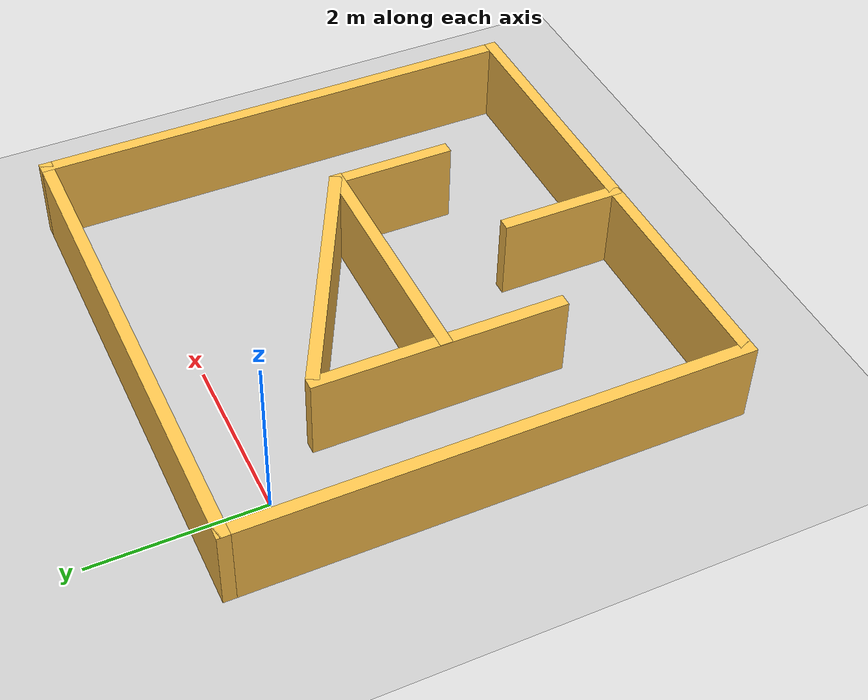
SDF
<sdf version="1.7">
 <world name="default">
  <light name="sun" type="directional">
   <pose>0 0 10 0 -0 0</pose>
   <diffuse>0.8 0.8 0.8 1</diffuse>
   <specular>0.2 0.2 0.2 1</specular>
   <attenuation>
    <range>1000</range>
    <constant>0.9</constant>
    <linear>0.01</linear>
    <quadratic>0.001</quadratic>
   </attenuation>
   <direction>-0.5 0.1 -0.9</direction>
   <spot><inner_angle>0</inner_angle><outer_angle>0</outer_angle><falloff>0</falloff></spot>
  </light>
  <model name="ground_plane">
   <static>1</static>
   <link name="link">
    <collision name="collision">
     <geometry><plane><normal>0 0 1</normal><size>100 100</size></plane></geometry>
     <surface>
      <contact><collide_bitmask>65535</collide_bitmask></contact>
      <friction><ode><mu>100</mu><mu2>50</mu2></ode></friction>
     </surface>
    </collision>
    <visual name="visual">
     <cast_shadows>0</cast_shadows>
     <geometry><plane><normal>0 0 1</normal><size>100 100</size></plane></geometry>
     <material>
      <script><uri>file://media/materials/scripts/gazebo.material</uri><name>Gazebo/Grey</name></script>
     </material>
    </visual>
   </link>
  </model>
  <gravity>0 0 -9.8</gravity>
  <magnetic_field>6e-06 2.3e-05 -4.2e-05</magnetic_field>
  <atmosphere type="adiabatic"/>
  <physics type="ode">
   <max_step_size>0.001</max_step_size>
   <real_time_factor>1</real_time_factor>
   <real_time_update_rate>1000</real_time_update_rate>
  </physics>
  <scene><ambient>0.4 0.4 0.4 1</ambient><background>0.7 0.7 0.7 1</background><shadows>1</shadows></scene>
  <audio><device>default</device></audio>
  <spherical_coordinates>
   <surface_model>EARTH_WGS84</surface_model>
   <latitude_deg>0</latitude_deg>
   <longitude_deg>0</longitude_deg>
   <elevation>0</elevation>
   <heading_deg>0</heading_deg>
  </spherical_coordinates>
  <model name="Circuit_ql_1">
   <link name="Wall_10">
    <pose>-0.0015 2.925 0 0 -0 3.14159</pose>
    <visual name="Wall_10_Visual">
     <pose>0 0 0.5 0 -0 0</pose>
     <geometry><box><size>6 0.15 1</size></box></geometry>
     <material>
      <script><uri>file://media/materials/scripts/gazebo.material</uri><name>Gazebo/Grey</name></script>
      <ambient>1 0.764706 0.305882 1</ambient>
      <shader type="pixel"/>
      <diffuse>0.7 0.7 0.7 1</diffuse>
      <specular>0.01 0.01 0.01 1</specular>
      <emissive>0 0 0 1</emissive>
     </material>
    </visual>
    <collision name="Wall_10_Collision">
     <pose>0 0 0.5 0 -0 0</pose>
     <geometry><box><size>6 0.15 1</size></box></geometry>
     <surface>
      <friction><ode><mu>1</mu><mu2>1</mu2><fdir1>0 0 0</fdir1><slip1>0</slip1><slip2>0</slip2></ode></friction>
      <bounce><restitution_coefficient>0</restitution_coefficient><threshold>1e+06</threshold></bounce>
      <contact>
       <collide_without_contact>0</collide_without_contact>
       <collide_without_contact_bitmask>1</collide_without_contact_bitmask>
       <collide_bitmask>1</collide_bitmask>
       <ode>
        <soft_cfm>0</soft_cfm>
        <soft_erp>0.2</soft_erp>
        <kp>1e+13</kp>
        <kd>1</kd>
        <max_vel>0.01</max_vel>
        <min_depth>0</min_depth>
       </ode>
       <bullet>
        <split_impulse>1</split_impulse>
        <split_impulse_penetration_threshold>-0.01</split_impulse_penetration_threshold>
        <soft_cfm>0</soft_cfm>
        <soft_erp>0.2</soft_erp>
        <kp>1e+13</kp>
        <kd>1</kd>
       </bullet>
      </contact>
     </surface>
    </collision>
   </link>
   <link name="Wall_11">
    <pose>-2.9265 0 0 0 0 -1.5708</pose>
    <visual name="Wall_11_Visual">
     <pose>0 0 0.5 0 -0 0</pose>
     <geometry><box><size>6 0.15 1</size></box></geometry>
     <material>
      <script><uri>file://media/materials/scripts/gazebo.material</uri><name>Gazebo/Grey</name></script>
      <ambient>1 0.764706 0.305882 1</ambient>
      <shader type="pixel"/>
      <diffuse>0.7 0.7 0.7 1</diffuse>
      <specular>0.01 0.01 0.01 1</specular>
      <emissive>0 0 0 1</emissive>
     </material>
    </visual>
    <collision name="Wall_11_Collision">
     <pose>0 0 0.5 0 -0 0</pose>
     <geometry><box><size>6 0.15 1</size></box></geometry>
     <surface>
      <friction><ode><mu>1</mu><mu2>1</mu2><fdir1>0 0 0</fdir1><slip1>0</slip1><slip2>0</slip2></ode></friction>
      <bounce><restitution_coefficient>0</restitution_coefficient><threshold>1e+06</threshold></bounce>
      <contact>
       <collide_without_contact>0</collide_without_contact>
       <collide_without_contact_bitmask>1</collide_without_contact_bitmask>
       <collide_bitmask>1</collide_bitmask>
       <ode>
        <soft_cfm>0</soft_cfm>
        <soft_erp>0.2</soft_erp>
        <kp>1e+13</kp>
        <kd>1</kd>
        <max_vel>0.01</max_vel>
        <min_depth>0</min_depth>
       </ode>
       <bullet>
        <split_impulse>1</split_impulse>
        <split_impulse_penetration_threshold>-0.01</split_impulse_penetration_threshold>
        <soft_cfm>0</soft_cfm>
        <soft_erp>0.2</soft_erp>
        <kp>1e+13</kp>
        <kd>1</kd>
       </bullet>
      </contact>
     </surface>
    </collision>
   </link>
   <link name="Wall_13">
    <pose>-0.1665 -2.238 0 0 -0 1.5708</pose>
    <visual name="Wall_13_Visual">
     <pose>0 0 0.5 0 -0 0</pose>
     <geometry><box><size>1.5 0.15 1</size></box></geometry>
     <material>
      <script><uri>file://media/materials/scripts/gazebo.material</uri><name>Gazebo/Grey</name></script>
      <ambient>1 0.764706 0.305882 1</ambient>
      <shader type="pixel"/>
      <diffuse>0.7 0.7 0.7 1</diffuse>
      <specular>0.01 0.01 0.01 1</specular>
      <emissive>0 0 0 1</emissive>
     </material>
    </visual>
    <collision name="Wall_13_Collision">
     <pose>0 0 0.5 0 -0 0</pose>
     <geometry><box><size>1.5 0.15 1</size></box></geometry>
     <surface>
      <friction><ode><mu>1</mu><mu2>1</mu2><fdir1>0 0 0</fdir1><slip1>0</slip1><slip2>0</slip2></ode></friction>
      <bounce><restitution_coefficient>0</restitution_coefficient><threshold>1e+06</threshold></bounce>
      <contact>
       <collide_without_contact>0</collide_without_contact>
       <collide_without_contact_bitmask>1</collide_without_contact_bitmask>
       <collide_bitmask>1</collide_bitmask>
       <ode>
        <soft_cfm>0</soft_cfm>
        <soft_erp>0.2</soft_erp>
        <kp>1e+13</kp>
        <kd>1</kd>
        <max_vel>0.01</max_vel>
        <min_depth>0</min_depth>
       </ode>
       <bullet>
        <split_impulse>1</split_impulse>
        <split_impulse_penetration_threshold>-0.01</split_impulse_penetration_threshold>
        <soft_cfm>0</soft_cfm>
        <soft_erp>0.2</soft_erp>
        <kp>1e+13</kp>
        <kd>1</kd>
       </bullet>
      </contact>
     </surface>
    </collision>
   </link>
   <link name="Wall_13_clone">
    <pose>1.32944 -0.77198 0 0 -0 1.5708</pose>
    <visual name="ModelPreview_1::Wall_13_clone::Wall_13_Visual">
     <pose>0 0 0.5 0 -0 0</pose>
     <geometry><box><size>1.5 0.15 1</size></box></geometry>
     <material>
      <script><uri>file://media/materials/scripts/gazebo.material</uri><name>Gazebo/Grey</name></script>
      <ambient>1 0.764706 0.305882 1</ambient>
      <shader type="pixel"/>
      <diffuse>0.7 0.7 0.7 1</diffuse>
      <specular>0.01 0.01 0.01 1</specular>
      <emissive>0 0 0 1</emissive>
     </material>
    </visual>
    <collision name="Wall_13_Collision">
     <pose>0 0 0.5 0 -0 0</pose>
     <geometry><box><size>1.5 0.15 1</size></box></geometry>
     <surface>
      <friction><ode><mu>1</mu><mu2>1</mu2><fdir1>0 0 0</fdir1><slip1>0</slip1><slip2>0</slip2></ode></friction>
      <bounce><restitution_coefficient>0</restitution_coefficient><threshold>1e+06</threshold></bounce>
      <contact>
       <collide_without_contact>0</collide_without_contact>
       <collide_without_contact_bitmask>1</collide_without_contact_bitmask>
       <collide_bitmask>1</collide_bitmask>
       <ode>
        <soft_cfm>0</soft_cfm>
        <soft_erp>0.2</soft_erp>
        <kp>1e+13</kp>
        <kd>1</kd>
        <max_vel>0.01</max_vel>
        <min_depth>0</min_depth>
       </ode>
       <bullet>
        <split_impulse>1</split_impulse>
        <split_impulse_penetration_threshold>-0.01</split_impulse_penetration_threshold>
        <soft_cfm>0</soft_cfm>
        <soft_erp>0.2</soft_erp>
        <kp>1e+13</kp>
        <kd>1</kd>
       </bullet>
      </contact>
     </surface>
    </collision>
   </link>
   <link name="Wall_15">
    <pose>-1.51922 -0.038071 0 0 -0 1.5708</pose>
    <visual name="Wall_15_Visual">
     <pose>0 0 0.5 0 -0 0</pose>
     <geometry><box><size>3 0.15 1</size></box></geometry>
     <material>
      <script><uri>file://media/materials/scripts/gazebo.material</uri><name>Gazebo/Grey</name></script>
      <ambient>1 0.764706 0.305882 1</ambient>
      <shader type="pixel"/>
      <diffuse>0.7 0.7 0.7 1</diffuse>
      <specular>0.01 0.01 0.01 1</specular>
      <emissive>0 0 0 1</emissive>
     </material>
    </visual>
    <collision name="Wall_15_Collision">
     <pose>0 0 0.5 0 -0 0</pose>
     <geometry><box><size>3 0.15 1</size></box></geometry>
     <surface>
      <friction><ode><mu>1</mu><mu2>1</mu2><fdir1>0 0 0</fdir1><slip1>0</slip1><slip2>0</slip2></ode></friction>
      <bounce><restitution_coefficient>0</restitution_coefficient><threshold>1e+06</threshold></bounce>
      <contact>
       <collide_without_contact>0</collide_without_contact>
       <collide_without_contact_bitmask>1</collide_without_contact_bitmask>
       <collide_bitmask>1</collide_bitmask>
       <ode>
        <soft_cfm>0</soft_cfm>
        <soft_erp>0.2</soft_erp>
        <kp>1e+13</kp>
        <kd>1</kd>
        <max_vel>0.01</max_vel>
        <min_depth>0</min_depth>
       </ode>
       <bullet>
        <split_impulse>1</split_impulse>
        <split_impulse_penetration_threshold>-0.01</split_impulse_penetration_threshold>
        <soft_cfm>0</soft_cfm>
        <soft_erp>0.2</soft_erp>
        <kp>1e+13</kp>
        <kd>1</kd>
       </bullet>
      </contact>
     </surface>
    </collision>
   </link>
   <link name="Wall_15_clone">
    <pose>-0.089166 -0.090738 0 0 0 -0.004296</pose>
    <visual name="ModelPreview_1::Wall_15_clone::Wall_15_Visual">
     <pose>0 0 0.5 0 -0 0</pose>
     <geometry><box><size>3 0.15 1</size></box></geometry>
     <material>
      <script><uri>file://media/materials/scripts/gazebo.material</uri><name>Gazebo/Grey</name></script>
      <ambient>1 0.764706 0.305882 1</ambient>
      <shader type="pixel"/>
      <diffuse>0.7 0.7 0.7 1</diffuse>
      <specular>0.01 0.01 0.01 1</specular>
      <emissive>0 0 0 1</emissive>
     </material>
    </visual>
    <collision name="Wall_15_Collision">
     <pose>0 0 0.5 0 -0 0</pose>
     <geometry><box><size>3 0.15 1</size></box></geometry>
     <surface>
      <friction><ode><mu>1</mu><mu2>1</mu2><fdir1>0 0 0</fdir1><slip1>0</slip1><slip2>0</slip2></ode></friction>
      <bounce><restitution_coefficient>0</restitution_coefficient><threshold>1e+06</threshold></bounce>
      <contact>
       <collide_without_contact>0</collide_without_contact>
       <collide_without_contact_bitmask>1</collide_without_contact_bitmask>
       <collide_bitmask>1</collide_bitmask>
       <ode>
        <soft_cfm>0</soft_cfm>
        <soft_erp>0.2</soft_erp>
        <kp>1e+13</kp>
        <kd>1</kd>
        <max_vel>0.01</max_vel>
        <min_depth>0</min_depth>
       </ode>
       <bullet>
        <split_impulse>1</split_impulse>
        <split_impulse_penetration_threshold>-0.01</split_impulse_penetration_threshold>
        <soft_cfm>0</soft_cfm>
        <soft_erp>0.2</soft_erp>
        <kp>1e+13</kp>
        <kd>1</kd>
       </bullet>
      </contact>
     </surface>
    </collision>
   </link>
   <link name="Wall_15_clone_0">
    <pose>-0.053217 0.650721 0 0 0 -0.479256</pose>
    <visual name="ModelPreview_1::Wall_15_clone_0::Wall_15_Visual">
     <pose>0 0 0.5 0 -0 0</pose>
     <geometry><box><size>3.22377 0.15 1</size></box></geometry>
     <material>
      <script><uri>file://media/materials/scripts/gazebo.material</uri><name>Gazebo/Grey</name></script>
      <ambient>1 0.764706 0.305882 1</ambient>
      <shader type="pixel"/>
      <diffuse>0.7 0.7 0.7 1</diffuse>
      <specular>0.01 0.01 0.01 1</specular>
      <emissive>0 0 0 1</emissive>
     </material>
    </visual>
    <collision name="Wall_15_Collision">
     <pose>0 0 0.5 0 -0 0</pose>
     <geometry><box><size>3.22377 0.15 1</size></box></geometry>
     <surface>
      <friction><ode><mu>1</mu><mu2>1</mu2><fdir1>0 0 0</fdir1><slip1>0</slip1><slip2>0</slip2></ode></friction>
      <bounce><restitution_coefficient>0</restitution_coefficient><threshold>1e+06</threshold></bounce>
      <contact>
       <collide_without_contact>0</collide_without_contact>
       <collide_without_contact_bitmask>1</collide_without_contact_bitmask>
       <collide_bitmask>1</collide_bitmask>
       <ode>
        <soft_cfm>0</soft_cfm>
        <soft_erp>0.2</soft_erp>
        <kp>1e+13</kp>
        <kd>1</kd>
        <max_vel>0.01</max_vel>
        <min_depth>0</min_depth>
       </ode>
       <bullet>
        <split_impulse>1</split_impulse>
        <split_impulse_penetration_threshold>-0.01</split_impulse_penetration_threshold>
        <soft_cfm>0</soft_cfm>
        <soft_erp>0.2</soft_erp>
        <kp>1e+13</kp>
        <kd>1</kd>
       </bullet>
      </contact>
     </surface>
    </collision>
   </link>
   <link name="Wall_6">
    <pose>-0.0015 -2.925 0 0 -0 0</pose>
    <visual name="Wall_6_Visual">
     <pose>0 0 0.5 0 -0 0</pose>
     <geometry><box><size>6 0.15 1</size></box></geometry>
     <material>
      <script><uri>file://media/materials/scripts/gazebo.material</uri><name>Gazebo/Grey</name></script>
      <ambient>1 0.764706 0.305882 1</ambient>
      <shader type="pixel"/>
      <diffuse>0.7 0.7 0.7 1</diffuse>
      <specular>0.01 0.01 0.01 1</specular>
      <emissive>0 0 0 1</emissive>
     </material>
    </visual>
    <collision name="Wall_6_Collision">
     <pose>0 0 0.5 0 -0 0</pose>
     <geometry><box><size>6 0.15 1</size></box></geometry>
     <surface>
      <friction><ode><mu>1</mu><mu2>1</mu2><fdir1>0 0 0</fdir1><slip1>0</slip1><slip2>0</slip2></ode></friction>
      <bounce><restitution_coefficient>0</restitution_coefficient><threshold>1e+06</threshold></bounce>
      <contact>
       <collide_without_contact>0</collide_without_contact>
       <collide_without_contact_bitmask>1</collide_without_contact_bitmask>
       <collide_bitmask>1</collide_bitmask>
       <ode>
        <soft_cfm>0</soft_cfm>
        <soft_erp>0.2</soft_erp>
        <kp>1e+13</kp>
        <kd>1</kd>
        <max_vel>0.01</max_vel>
        <min_depth>0</min_depth>
       </ode>
       <bullet>
        <split_impulse>1</split_impulse>
        <split_impulse_penetration_threshold>-0.01</split_impulse_penetration_threshold>
        <soft_cfm>0</soft_cfm>
        <soft_erp>0.2</soft_erp>
        <kp>1e+13</kp>
        <kd>1</kd>
       </bullet>
      </contact>
     </surface>
    </collision>
   </link>
   <link name="Wall_7">
    <pose>2.9235 0 0 0 -0 1.5708</pose>
    <visual name="Wall_7_Visual">
     <pose>0 0 0.5 0 -0 0</pose>
     <geometry><box><size>6 0.15 1</size></box></geometry>
     <material>
      <script><uri>file://media/materials/scripts/gazebo.material</uri><name>Gazebo/Grey</name></script>
      <ambient>1 0.764706 0.305882 1</ambient>
      <shader type="pixel"/>
      <diffuse>0.7 0.7 0.7 1</diffuse>
      <specular>0.01 0.01 0.01 1</specular>
      <emissive>0 0 0 1</emissive>
     </material>
    </visual>
    <collision name="Wall_7_Collision">
     <pose>0 0 0.5 0 -0 0</pose>
     <geometry><box><size>6 0.15 1</size></box></geometry>
     <surface>
      <friction><ode><mu>1</mu><mu2>1</mu2><fdir1>0 0 0</fdir1><slip1>0</slip1><slip2>0</slip2></ode></friction>
      <bounce><restitution_coefficient>0</restitution_coefficient><threshold>1e+06</threshold></bounce>
      <contact>
       <collide_without_contact>0</collide_without_contact>
       <collide_without_contact_bitmask>1</collide_without_contact_bitmask>
       <collide_bitmask>1</collide_bitmask>
       <ode>
        <soft_cfm>0</soft_cfm>
        <soft_erp>0.2</soft_erp>
        <kp>1e+13</kp>
        <kd>1</kd>
        <max_vel>0.01</max_vel>
        <min_depth>0</min_depth>
       </ode>
       <bullet>
        <split_impulse>1</split_impulse>
        <split_impulse_penetration_threshold>-0.01</split_impulse_penetration_threshold>
        <soft_cfm>0</soft_cfm>
        <soft_erp>0.2</soft_erp>
        <kp>1e+13</kp>
        <kd>1</kd>
       </bullet>
      </contact>
     </surface>
    </collision>
   </link>
   <static>1</static>
   <pose>2.0569 -2.13436 0 0 -0 0</pose>
  </model>
 </world>
</sdf>
